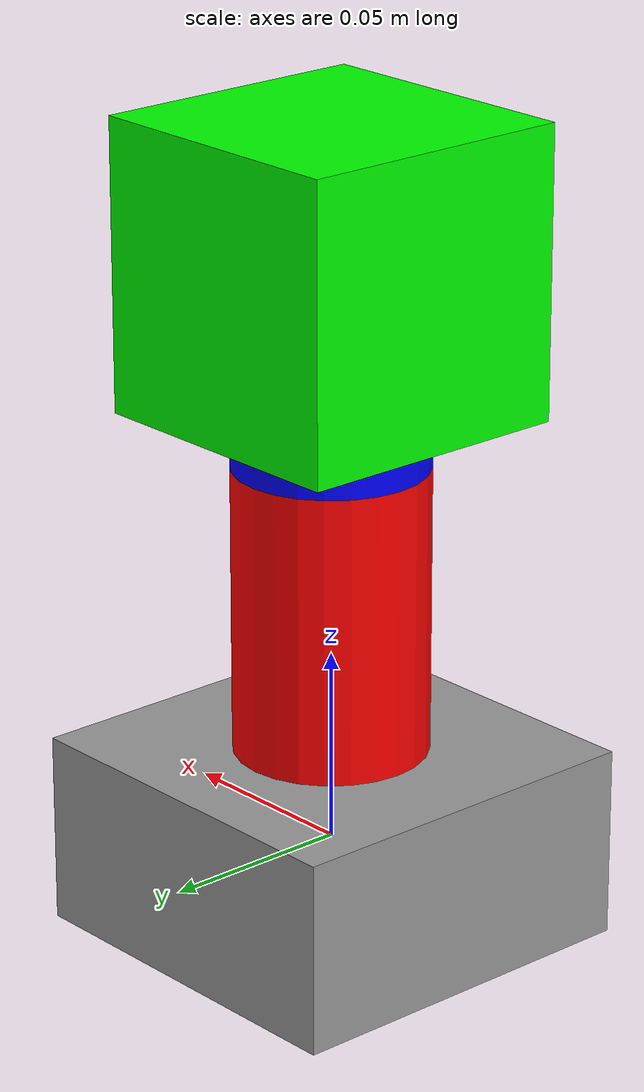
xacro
<?xml version="1.0"?>
<robot name="starks_arm" xmlns:xacro="http://www.ros.org/wiki/xacro">

  <!-- Colors -->
  <material name="gray">
    <color rgba="0.6 0.6 0.6 1"/>
  </material>

  <material name="red">
    <color rgba="1 0 0 1"/>
  </material>

  <material name="blue">
    <color rgba="0 0 1 1"/>
  </material>

  <material name="green">
    <color rgba="0 1 0 1"/>
  </material>

  <!-- Base -->
  <link name="base">
    <visual>
      <geometry>
        <box size="0.10 0.10 0.05"/>
      </geometry>
      <material name="gray"/>
    </visual>
  </link>

  <!-- Link 1 -->
  <link name="link1">
    <visual>
      <origin xyz="0 0 0.0375"/>
      <geometry>
        <cylinder radius="0.025" length="0.075"/>
      </geometry>
      <material name="red"/>
    </visual>
  </link>

  <!-- Link 2 -->
  <link name="link2">
    <visual>
      <origin xyz="0 0 0.025"/>
      <geometry>
        <cylinder radius="0.025" length="0.05"/>
      </geometry>
      <material name="blue"/>
    </visual>
  </link>

  <!-- End Effector -->
  <link name="end_effector">
    <visual>
      <geometry>
        <box size="0.075 0.075 0.075"/>
      </geometry>
      <material name="green"/>
    </visual>
  </link>

  <!-- Joint 1 -->
  <joint name="joint1" type="revolute">
    <parent link="base"/>
    <child link="link1"/>
    <origin xyz="0 0 0.025"/>
    <axis xyz="0 0 1"/>
    <limit lower="-1.57" upper="1.57" effort="10" velocity="1"/>
  </joint>

  <!-- Joint 2 -->
  <joint name="joint2" type="revolute">
    <parent link="link1"/>
    <child link="link2"/>
    <origin xyz="0 0 0.075"/>
    <axis xyz="0 1 0"/>
    <limit lower="-1.57" upper="1.57" effort="10" velocity="1"/>
  </joint>

  <!-- Joint 3 -->
  <joint name="joint3" type="revolute">
    <parent link="link2"/>
    <child link="end_effector"/>
    <origin xyz="0 0 0.05"/>
    <axis xyz="0 0 1"/>
    <limit lower="-1.57" upper="1.57" effort="10" velocity="1"/>
  </joint>

</robot>
